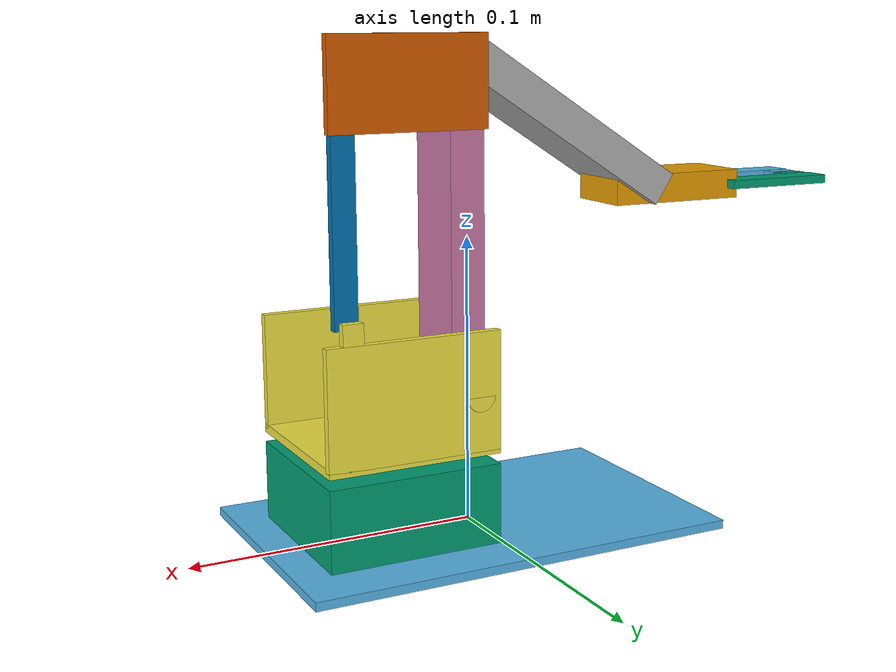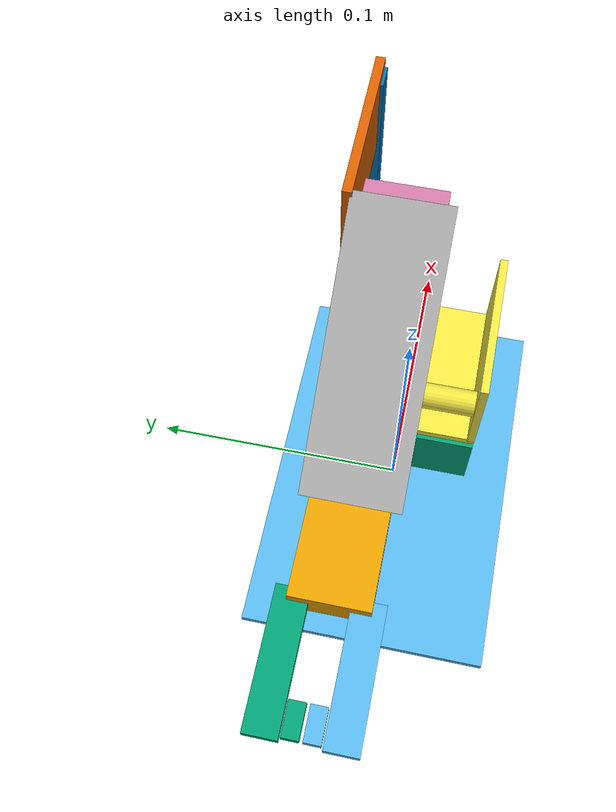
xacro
<?xml version='1.0'?>

<robot name="simple_arm"
  xmlns:xacro="http://www.ros.org/wiki/xacro">

  <!-- Used for fixing robot to Gazebo 'base_link' -->
  <link name="world"/>

  <joint name="fixed" type="fixed">
    <parent link="world"/>
    <child link="arm_footprint"/>
  </joint>

  <!-- footprint tile -->
  <link name='arm_footprint'>
    <inertial>
      <mass value="0.1"/>
      <origin xyz="0.0 0 0" rpy="0 0 0"/>
      <inertia ixx="1" ixy="0.0" ixz="0.0" iyy="1" iyz="0.0" izz="1"/>
    </inertial>

    <collision name='arm_footprint_collision'>
      <origin xyz="0 0 0" rpy="0 0 0"/>
      <geometry>
        <box size="0.15 .095 .003"/>
      </geometry>
    </collision>

    <visual name='arm_footprint_visual'>
      <origin xyz="0 0 0" rpy="0 0 0"/>
      <geometry>
        <box size="0.15 .095 .003"/>
      </geometry>
    </visual>
  </link>
  <!-- begin base block -->
  <joint name="arm_footprint_base_block_joint" type="fixed">
    <origin xyz="0.033 0 0.015"/>
    <child link="base_block" />
    <parent link="arm_footprint" />
  </joint>

  <link name='base_block'>
    <inertial>
      <mass value="0.05" />
      <inertia ixx="1" ixy="0.0" ixz="0.0" iyy="1" iyz="0.0" izz="1"/>
    </inertial>
    <visual name='base_block_visual'>
      <origin xyz="0 0 0" rpy="0 0 0"/>
      <geometry>
        <box size="0.06 0.06 0.028"/>
      </geometry>
    </visual>
    <collision name='base_block_collision'>
      <origin xyz="0 0 0" rpy="0 0 0"/>
      <geometry>
        <box size="0.06 0.06 0.028"/>
      </geometry>
    </collision>

  </link>
  <!-- end base block -->
  <!-- begin rotating block -->
  <joint name="base_block_rotating_block_joint" type="revolute">
    <limit lower="-1.54" upper="1.54" effort="10" velocity="3"/>
    <axis xyz="0 0 1"/>
    <origin xyz="0 0 0.019" rpy="0 0 0" />
    <child link="rotating_block"/>
    <parent link="base_block"/>
  </joint>
  <link name='rotating_block'>
    <inertial>
      <mass value="0.05" />
      <inertia ixx="1" ixy="0.0" ixz="0.0" iyy="1" iyz="0.0" izz="1"/>
    </inertial>

    <visual name='rotating_block_visual_right'>
      <origin xyz="0 0.0285 0.02" rpy="0 0 0"/>
      <geometry>
        <box size="0.06 0.003 0.04"/>
      </geometry>
    </visual>
    <visual name='rotating_block_visual_right_raised'>
      <origin xyz="0.021 0.0285 0.0435" rpy="0 0 0"/>
      <geometry>
        <box size="0.007 0.003 0.007"/>
      </geometry>
    </visual>

    <visual name='rotating_block_visual_left'>
      <origin xyz="0 -0.0285 0.02" rpy="0 0 0"/>
      <geometry>
        <box size="0.06 0.003 0.04"/>
      </geometry>
    </visual>

    <visual name='rotating_block_visual_base'>
      <origin xyz="0 0 0" rpy="0 0 0"/>
      <geometry>
        <box size="0.06 0.06 0.003"/>
      </geometry>
    </visual>
    <collision name='rotating_block_collision_right'>
      <origin xyz="0 0.0285 0.02" rpy="0 0 0"/>
      <geometry>
        <box size="0.06 0.003 0.04"/>
      </geometry>
    </collision>

    <collision name='rotating_block_collision_right_raised'>
      <origin xyz="0.021 0.0285 0.0435" rpy="0 0 0"/>
      <geometry>
        <box size="0.007 0.003 0.007"/>
      </geometry>
    </collision>

    <collision name='rotating_block_collision_left'>
      <origin xyz="0 -0.0285 0.02" rpy="0 0 0"/>
      <geometry>
        <box size="0.06 0.003 0.04"/>
      </geometry>
    </collision>

    <collision name='rotating_block_collision_base'>
      <origin xyz="0 0 0" rpy="0 0 0"/>
      <geometry>
        <box size="0.06 0.06 0.003"/>
      </geometry>
    </collision>

    <visual name='rotating_block_vertical_arm_axis'>
      <!-- no collission for this part as it's just for our visual reference -->
      <origin xyz="-0.023 0 0.01825" rpy="1.573301 0 0"/>
      <geometry>
        <cylinder length="0.06" radius="0.005"/>
      </geometry>
    </visual>

  </link>
  <!-- end rotating block -->
  <!-- begin back arm -->
  <joint name="rotating_block_back_arm_joint" type="revolute">
    <limit lower="-1.54" upper="0.6" effort="10" velocity="3"/>
    <axis xyz="0 1 0"/>
    <origin xyz="0.021 0.023 0.04375" rpy="0 0 0"/>
    <child link="back_arm"/>
    <parent link="rotating_block"/>
  </joint>
  <link name='back_arm'>
    <inertial>
      <mass value="0.05" />
      <inertia ixx="1" ixy="0.0" ixz="0.0" iyy="1" iyz="0.0" izz="1"/>
    </inertial>

    <visual name='back_arm_visual'>
      <origin xyz="0 0 0.04375" rpy="0 0 0"/>
      <geometry>
        <box size=".008 .003 .0875"/>
      </geometry>
    </visual>
  </link>

  <!-- end back arm -->
  <!-- begin top block -->

  <gazebo>
    <plugin name="simple_arm_pegasus_gazebo_plugin" filename="libpegasus_gazebo_closed_loop_plugin.so">
      <joint>back_arm_top_block_joint</joint>
      <child>back_arm</child>
      <parent>top_block</parent>
      <rotation>0 0  0</rotation>
      <position>0.0377 0.0 .01856</position>
    </plugin>
  </gazebo>

  <joint name="vertical_arm_top_block_joint" type="revolute">
    <limit lower="-1.54" upper="0.6" effort="10" velocity="3"/>
    <axis xyz="0 1 0"/>
    <origin xyz="0 0.016 0.0938" rpy="0 0 0"/>
    <child link="top_block"/>
    <parent link="vertical_arm"/>
  </joint>

  <link name='top_block'>
    <inertial>
      <mass value="0.05" />
      <inertia ixx="1" ixy="0.0" ixz="0.0" iyy="1" iyz="0.0" izz="1"/>
    </inertial>

    <visual name='top_block_visual'>
      <origin xyz=".022 0 0" rpy="0 0 0"/>
      <geometry>
        <box size=".054 .003 .030"/>
      </geometry>
    </visual>
  </link>
  <!-- end top blocl-->

  <!-- begin vertical arm -->
  <joint name="rotating_block_vertical_arm_joint" type="revolute">
    <limit lower="-1.54" upper="0.6" effort="10" velocity="3"/>
    <axis xyz="0 1 0"/>
    <origin xyz="-0.023 0.008 0.02525" rpy="0 0 0"/>
    <child link="vertical_arm"/>
    <parent link="rotating_block"/>
  </joint>

  <link name='vertical_arm'>
    <inertial>
      <mass value="0.05" />
      <inertia ixx="1" ixy="0.0" ixz="0.0" iyy="1" iyz="0.0" izz="1"/>
    </inertial>
    <visual name='vertical_arm_visual'>
      <origin xyz="0 0 0.0515" rpy="0 0 0"/>
      <geometry>
        <box size="0.012 0.025 0.103"/>
      </geometry>
    </visual>
    <collision name='vertical_arm_collision'>
      <origin xyz="0 0 0.0515" rpy="0 0 0"/>
      <geometry>
        <box size="0.012 0.025 0.103"/>
      </geometry>
    </collision>

  </link>
  <!-- end vertical arm -->
  <!-- begin forearm -->
  <joint name="vertical_arm_forearm_joint" type="revolute">
    <limit lower="-.78" upper="1.7" effort="10" velocity="3"/>
    <axis xyz="0 1 0"/>
    <origin xyz="0 0.0 0.103" rpy="0 1 0"/>
    <parent link="vertical_arm"/>
    <child link="forearm"/>
  </joint>

  <link name='forearm'>
    <inertial>
      <mass value="0.05" />
      <inertia ixx="1" ixy="0.0" ixz="0.0" iyy="1" iyz="0.0" izz="1"/>
    </inertial>
    <visual name='forearm_visual'>
      <origin xyz="0 0 -0.044" rpy="0 0 0"/>
      <geometry>
        <box size="0.012 0.0305 0.088"/>
      </geometry>
    </visual>
    <collision name='forearm_collision'>
      <origin xyz="0 0 -0.044" rpy="0 0 0"/>
      <geometry>
        <box size="0.012 0.0305 0.088"/>
      </geometry>
    </collision>
  </link>
  <!-- end forearm -->
  <!-- begin actuator -->
  <joint name="actuator_forearm_joint" type="revolute">
    <limit lower="-.78" upper="1.7" effort="10" velocity="3"/>
    <axis xyz="0 1 0"/>
    <origin xyz="0 0.0 -0.088" rpy="0 0.57 0"/>
    <child link="actuator_body"/>
    <parent link="forearm"/>
  </joint>

  <link name='actuator_body'>
    <inertial>
      <mass value="0.05" />
      <inertia ixx="1" ixy="0.0" ixz="0.0" iyy="1" iyz="0.0" izz="1"/>
    </inertial>
    <visual name='actuator_body_visual'>
      <origin xyz="0 0 -0.008" rpy="0 0 0"/>
      <geometry>
        <box size="0.01 0.024 0.050"/>
      </geometry>
    </visual>
    <collision name='actuator_body_collision'>
      <origin xyz="0 0 -0.008" rpy="0 0 0"/>
      <geometry>
        <box size="0.01 0.024 0.050"/>
      </geometry>
    </collision>

  </link>
  <joint name="left_gripper_actuator_body" type="revolute">
    <limit lower="-.78" upper="0" effort="10" velocity="3"/>
    <axis xyz="1 0 0"/>
    <origin xyz="0 -0.0109 -0.029 " rpy="0 0 0"/>
    <parent link="actuator_body"/>
    <child link="left_gripper"/>
  </joint>

  <link name='left_gripper'>
    <inertial>
      <mass value="0.005" />
      <inertia ixx="1" ixy="0.0" ixz="0.0" iyy="1" iyz="0.0" izz="1"/>
    </inertial>
    <visual name='left_gripper_visual'>
      <origin xyz="0 0 -0.0205" rpy="0 0 0"/>
      <geometry>
        <box size="0.003 0.01 0.041"/>
      </geometry>
    </visual>
    <visual name='left_gripper_tip_visual'>
      <origin xyz="0 .0079 -0.035" rpy="0 0 0"/>
      <geometry>
        <box size="0.003 0.005 0.01"/>
      </geometry>
    </visual>
    <collision name='left_gripper_collision'>
      <origin xyz="0 0 -0.0205" rpy="0 0 0"/>
      <geometry>
        <box size="0.003 0.01 0.041"/>
      </geometry>
    </collision>
    <collision name='left_gripper_tip_collision'>
      <origin xyz="0 .0079 -0.035" rpy="0 0 0"/>
      <geometry>
        <box size="0.003 0.005 0.01"/>
      </geometry>
    </collision>
  </link>
  <joint name="right_gripper_actuator_body" type="revolute">
    <limit lower="0" upper="0.78" effort="10" velocity="3"/>
    <axis xyz="1 0 0"/>
    <origin xyz="0 0.0109 -0.029 " rpy="0 0 0"/>
    <parent link="actuator_body"/>
    <child link="right_gripper"/>
  </joint>

  <link name='right_gripper'>
    <inertial>
      <mass value="0.005" />
      <inertia ixx="1" ixy="0.0" ixz="0.0" iyy="1" iyz="0.0" izz="1"/>
    </inertial>
    <visual name='right_gripper_side_visual'>
      <origin xyz="0 0 -0.0205" rpy="0 0 0"/>
      <geometry>
        <box size="0.003 0.01 0.041"/>
      </geometry>
    </visual>
    <visual name='right_gripper_tip_visual'>
      <origin xyz="0 -.0079 -0.035" rpy="0 0 0"/>
      <geometry>
        <box size="0.003 0.005 0.01"/>
      </geometry>
    </visual>
    <collision name='right_gripper_side_collision'>
      <origin xyz="0 0 -0.0205" rpy="0 0 0"/>
      <geometry>
        <box size="0.003 0.01 0.041"/>
      </geometry>
    </collision>
    <collision name='right_gripper_tip_collision'>
      <origin xyz="0 -.0079 -0.035" rpy="0 0 0"/>
      <geometry>
        <box size="0.003 0.005 0.01"/>
      </geometry>
    </collision>
  </link>

  <!-- end actuator-->

</robot>
